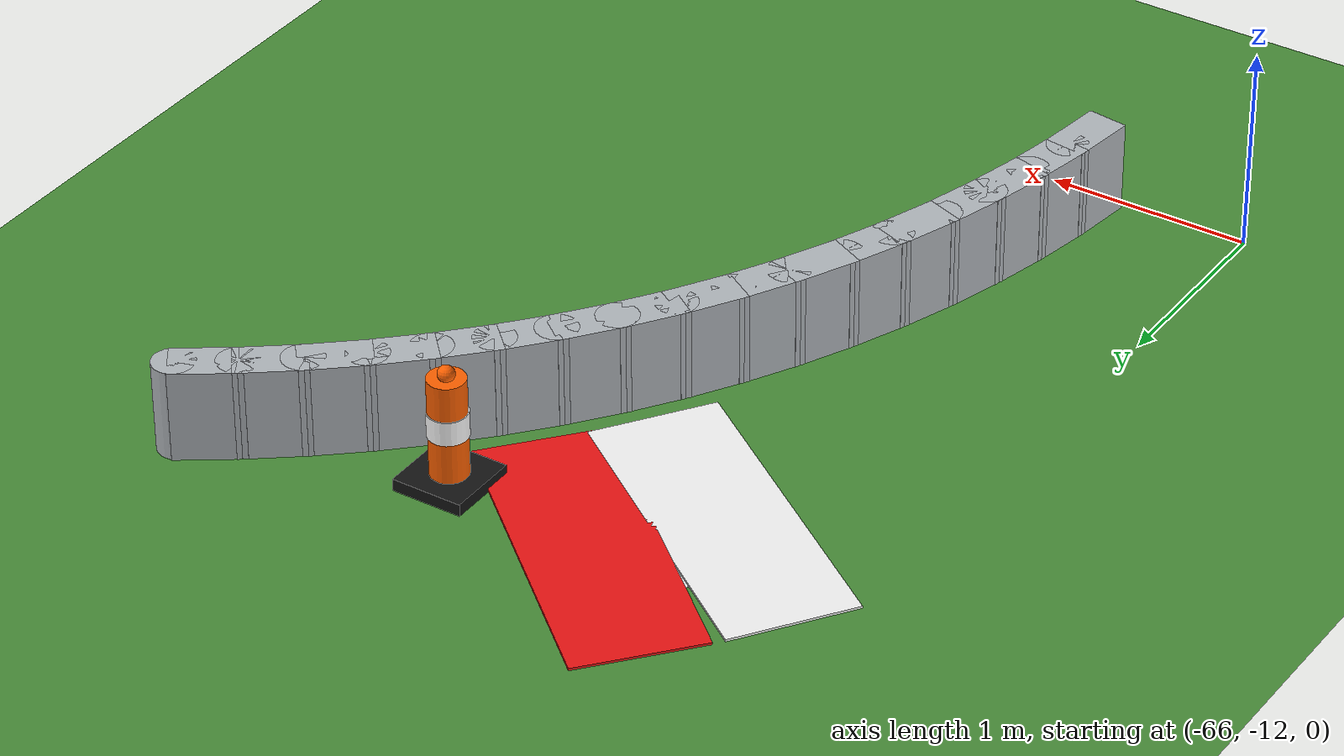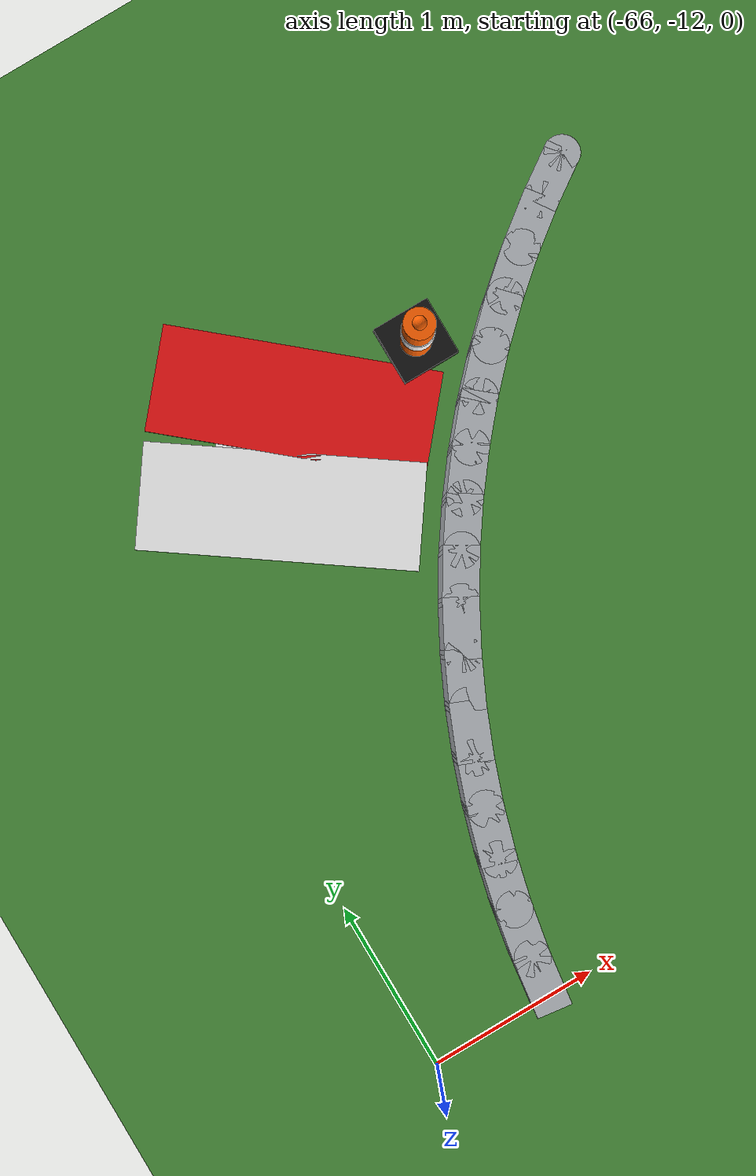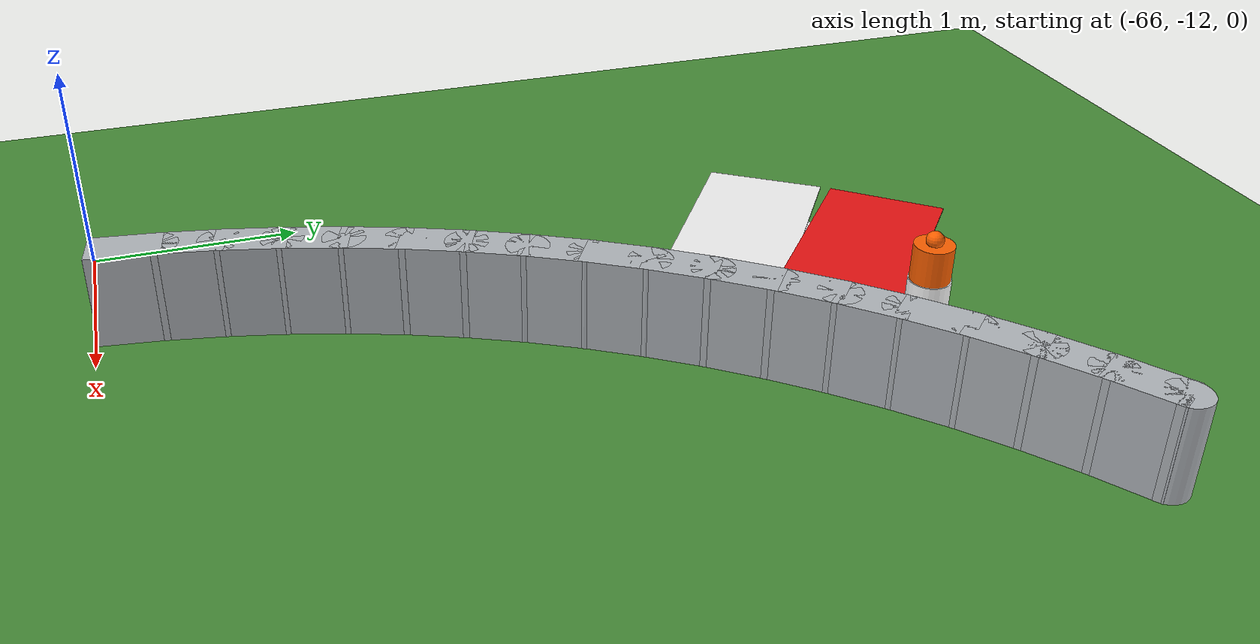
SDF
<sdf version="1.6">
 <world name="sem_silesia_ring_2026">
  <model name="ground_plane">
   <static>true</static>
   <link name="link">
    <collision name="collision">
     <geometry><plane><normal>0 0 1</normal><size>600 600</size></plane></geometry>
     <surface><friction><ode><mu>0.6</mu><mu2>0.6</mu2></ode></friction></surface>
    </collision>
    <visual name="visual">
     <geometry><plane><normal>0 0 1</normal><size>600 600</size></plane></geometry>
     <material><ambient>0.28 0.55 0.22 1</ambient><diffuse>0.28 0.55 0.22 1</diffuse></material>
    </visual>
   </link>
  </model>
  <model name="wl_Li_jnt16">
   <static>true</static>
   <pose>-64.9048 -8.0837 0.0050 0 0 0</pose>
   <link name="link">
    <visual name="v">
     <geometry><cylinder><radius>0.1000</radius><length>0.0040</length></cylinder></geometry>
     <material><ambient>1 1 1 1</ambient><diffuse>1 1 1 1</diffuse></material>
    </visual>
    <collision name="c">
     <geometry><cylinder><radius>0.1000</radius><length>0.0040</length></cylinder></geometry>
     <surface><friction><ode><mu>0.9</mu><mu2>0.9</mu2></ode></friction></surface>
    </collision>
   </link>
  </model>
  <model name="wl_Li_s16">
   <static>true</static>
   <pose>-65.0187 -8.2136 0.0050 0 0 4.0055</pose>
   <link name="link">
    <visual name="v">
     <geometry><box><size>0.4008 0.2000 0.0040</size></box></geometry>
     <material><ambient>1 1 1 1</ambient><diffuse>1 1 1 1</diffuse></material>
    </visual>
    <collision name="c">
     <geometry><box><size>0.4008 0.2000 0.0040</size></box></geometry>
     <surface><friction><ode><mu>0.9</mu><mu2>0.9</mu2></ode></friction></surface>
    </collision>
   </link>
  </model>
  <model name="wl_Li_jnt17">
   <static>true</static>
   <pose>-65.1292 -8.3465 0.0050 0 0 0</pose>
   <link name="link">
    <visual name="v">
     <geometry><cylinder><radius>0.1000</radius><length>0.0040</length></cylinder></geometry>
     <material><ambient>1 1 1 1</ambient><diffuse>1 1 1 1</diffuse></material>
    </visual>
    <collision name="c">
     <geometry><cylinder><radius>0.1000</radius><length>0.0040</length></cylinder></geometry>
     <surface><friction><ode><mu>0.9</mu><mu2>0.9</mu2></ode></friction></surface>
    </collision>
   </link>
  </model>
  <model name="wl_Li_s17">
   <static>true</static>
   <pose>-65.2361 -8.4822 0.0050 0 0 4.0579</pose>
   <link name="link">
    <visual name="v">
     <geometry><box><size>0.4008 0.2000 0.0040</size></box></geometry>
     <material><ambient>1 1 1 1</ambient><diffuse>1 1 1 1</diffuse></material>
    </visual>
    <collision name="c">
     <geometry><box><size>0.4008 0.2000 0.0040</size></box></geometry>
     <surface><friction><ode><mu>0.9</mu><mu2>0.9</mu2></ode></friction></surface>
    </collision>
   </link>
  </model>
  <model name="kL_in_k2">
   <static>true</static>
   <pose>-64.7906 -8.4085 0.0120 0 0 4.0055</pose>
   <link name="link">
    <visual name="v">
     <geometry><box><size>0.6135 1.6000 0.0120</size></box></geometry>
     <material><ambient>0.92 0.08 0.08 1</ambient><diffuse>0.92 0.08 0.08 1</diffuse></material>
    </visual>
    <collision name="c">
     <geometry><box><size>0.6135 1.6000 0.0120</size></box></geometry>
     <surface><friction><ode><mu>0.9</mu><mu2>0.9</mu2></ode></friction></surface>
    </collision>
   </link>
  </model>
  <model name="kL_in_k3">
   <static>true</static>
   <pose>-65.1543 -8.8775 0.0120 0 0 4.0998</pose>
   <link name="link">
    <visual name="v">
     <geometry><box><size>0.6135 1.6000 0.0120</size></box></geometry>
     <material><ambient>0.96 0.96 0.96 1</ambient><diffuse>0.96 0.96 0.96 1</diffuse></material>
    </visual>
    <collision name="c">
     <geometry><box><size>0.6135 1.6000 0.0120</size></box></geometry>
     <surface><friction><ode><mu>0.9</mu><mu2>0.9</mu2></ode></friction></surface>
    </collision>
   </link>
  </model>
  <model name="arm_Li_jnt11">
   <static>true</static>
   <pose>-62.8866 -8.0550 0.2250 0 0 0</pose>
   <link name="link">
    <visual name="v">
     <geometry><cylinder><radius>0.1000</radius><length>0.4500</length></cylinder></geometry>
     <material><ambient>0.70 0.72 0.74 1</ambient><diffuse>0.70 0.72 0.74 1</diffuse></material>
    </visual>
    <collision name="c">
     <geometry><cylinder><radius>0.1000</radius><length>0.4500</length></cylinder></geometry>
     <surface><friction><ode><mu>0.9</mu><mu2>0.9</mu2></ode></friction></surface>
    </collision>
   </link>
  </model>
  <model name="arm_Li_s11">
   <static>true</static>
   <pose>-63.0020 -8.1321 0.2250 0 0 3.7437</pose>
   <link name="link">
    <visual name="v">
     <geometry><box><size>0.3327 0.2000 0.4500</size></box></geometry>
     <material><ambient>0.70 0.72 0.74 1</ambient><diffuse>0.70 0.72 0.74 1</diffuse></material>
    </visual>
    <collision name="c">
     <geometry><box><size>0.3327 0.2000 0.4500</size></box></geometry>
     <surface><friction><ode><mu>0.9</mu><mu2>0.9</mu2></ode></friction></surface>
    </collision>
   </link>
  </model>
  <model name="arm_Li_jnt12">
   <static>true</static>
   <pose>-63.1153 -8.2122 0.2250 0 0 0</pose>
   <link name="link">
    <visual name="v">
     <geometry><cylinder><radius>0.1000</radius><length>0.4500</length></cylinder></geometry>
     <material><ambient>0.70 0.72 0.74 1</ambient><diffuse>0.70 0.72 0.74 1</diffuse></material>
    </visual>
    <collision name="c">
     <geometry><cylinder><radius>0.1000</radius><length>0.4500</length></cylinder></geometry>
     <surface><friction><ode><mu>0.9</mu><mu2>0.9</mu2></ode></friction></surface>
    </collision>
   </link>
  </model>
  <model name="arm_Li_s12">
   <static>true</static>
   <pose>-63.2264 -8.2952 0.2250 0 0 3.7961</pose>
   <link name="link">
    <visual name="v">
     <geometry><box><size>0.3327 0.2000 0.4500</size></box></geometry>
     <material><ambient>0.70 0.72 0.74 1</ambient><diffuse>0.70 0.72 0.74 1</diffuse></material>
    </visual>
    <collision name="c">
     <geometry><box><size>0.3327 0.2000 0.4500</size></box></geometry>
     <surface><friction><ode><mu>0.9</mu><mu2>0.9</mu2></ode></friction></surface>
    </collision>
   </link>
  </model>
  <model name="arm_Li_jnt13">
   <static>true</static>
   <pose>-63.3354 -8.3811 0.2250 0 0 0</pose>
   <link name="link">
    <visual name="v">
     <geometry><cylinder><radius>0.1000</radius><length>0.4500</length></cylinder></geometry>
     <material><ambient>0.70 0.72 0.74 1</ambient><diffuse>0.70 0.72 0.74 1</diffuse></material>
    </visual>
    <collision name="c">
     <geometry><cylinder><radius>0.1000</radius><length>0.4500</length></cylinder></geometry>
     <surface><friction><ode><mu>0.9</mu><mu2>0.9</mu2></ode></friction></surface>
    </collision>
   </link>
  </model>
  <model name="arm_Li_s13">
   <static>true</static>
   <pose>-63.4421 -8.4698 0.2250 0 0 3.8485</pose>
   <link name="link">
    <visual name="v">
     <geometry><box><size>0.3327 0.2000 0.4500</size></box></geometry>
     <material><ambient>0.70 0.72 0.74 1</ambient><diffuse>0.70 0.72 0.74 1</diffuse></material>
    </visual>
    <collision name="c">
     <geometry><box><size>0.3327 0.2000 0.4500</size></box></geometry>
     <surface><friction><ode><mu>0.9</mu><mu2>0.9</mu2></ode></friction></surface>
    </collision>
   </link>
  </model>
  <model name="arm_Li_jnt14">
   <static>true</static>
   <pose>-63.5464 -8.5613 0.2250 0 0 0</pose>
   <link name="link">
    <visual name="v">
     <geometry><cylinder><radius>0.1000</radius><length>0.4500</length></cylinder></geometry>
     <material><ambient>0.70 0.72 0.74 1</ambient><diffuse>0.70 0.72 0.74 1</diffuse></material>
    </visual>
    <collision name="c">
     <geometry><cylinder><radius>0.1000</radius><length>0.4500</length></cylinder></geometry>
     <surface><friction><ode><mu>0.9</mu><mu2>0.9</mu2></ode></friction></surface>
    </collision>
   </link>
  </model>
  <model name="arm_Li_s14">
   <static>true</static>
   <pose>-63.6483 -8.6555 0.2250 0 0 3.9008</pose>
   <link name="link">
    <visual name="v">
     <geometry><box><size>0.3327 0.2000 0.4500</size></box></geometry>
     <material><ambient>0.70 0.72 0.74 1</ambient><diffuse>0.70 0.72 0.74 1</diffuse></material>
    </visual>
    <collision name="c">
     <geometry><box><size>0.3327 0.2000 0.4500</size></box></geometry>
     <surface><friction><ode><mu>0.9</mu><mu2>0.9</mu2></ode></friction></surface>
    </collision>
   </link>
  </model>
  <model name="arm_Li_jnt15">
   <static>true</static>
   <pose>-63.7477 -8.7523 0.2250 0 0 0</pose>
   <link name="link">
    <visual name="v">
     <geometry><cylinder><radius>0.1000</radius><length>0.4500</length></cylinder></geometry>
     <material><ambient>0.70 0.72 0.74 1</ambient><diffuse>0.70 0.72 0.74 1</diffuse></material>
    </visual>
    <collision name="c">
     <geometry><cylinder><radius>0.1000</radius><length>0.4500</length></cylinder></geometry>
     <surface><friction><ode><mu>0.9</mu><mu2>0.9</mu2></ode></friction></surface>
    </collision>
   </link>
  </model>
  <model name="arm_Li_s15">
   <static>true</static>
   <pose>-63.8445 -8.8517 0.2250 0 0 3.9532</pose>
   <link name="link">
    <visual name="v">
     <geometry><box><size>0.3327 0.2000 0.4500</size></box></geometry>
     <material><ambient>0.70 0.72 0.74 1</ambient><diffuse>0.70 0.72 0.74 1</diffuse></material>
    </visual>
    <collision name="c">
     <geometry><box><size>0.3327 0.2000 0.4500</size></box></geometry>
     <surface><friction><ode><mu>0.9</mu><mu2>0.9</mu2></ode></friction></surface>
    </collision>
   </link>
  </model>
  <model name="arm_Li_jnt16">
   <static>true</static>
   <pose>-63.9387 -8.9536 0.2250 0 0 0</pose>
   <link name="link">
    <visual name="v">
     <geometry><cylinder><radius>0.1000</radius><length>0.4500</length></cylinder></geometry>
     <material><ambient>0.70 0.72 0.74 1</ambient><diffuse>0.70 0.72 0.74 1</diffuse></material>
    </visual>
    <collision name="c">
     <geometry><cylinder><radius>0.1000</radius><length>0.4500</length></cylinder></geometry>
     <surface><friction><ode><mu>0.9</mu><mu2>0.9</mu2></ode></friction></surface>
    </collision>
   </link>
  </model>
  <model name="arm_Li_s16">
   <static>true</static>
   <pose>-64.0302 -9.0579 0.2250 0 0 4.0055</pose>
   <link name="link">
    <visual name="v">
     <geometry><box><size>0.3327 0.2000 0.4500</size></box></geometry>
     <material><ambient>0.70 0.72 0.74 1</ambient><diffuse>0.70 0.72 0.74 1</diffuse></material>
    </visual>
    <collision name="c">
     <geometry><box><size>0.3327 0.2000 0.4500</size></box></geometry>
     <surface><friction><ode><mu>0.9</mu><mu2>0.9</mu2></ode></friction></surface>
    </collision>
   </link>
  </model>
  <model name="arm_Li_jnt17">
   <static>true</static>
   <pose>-64.1189 -9.1646 0.2250 0 0 0</pose>
   <link name="link">
    <visual name="v">
     <geometry><cylinder><radius>0.1000</radius><length>0.4500</length></cylinder></geometry>
     <material><ambient>0.70 0.72 0.74 1</ambient><diffuse>0.70 0.72 0.74 1</diffuse></material>
    </visual>
    <collision name="c">
     <geometry><cylinder><radius>0.1000</radius><length>0.4500</length></cylinder></geometry>
     <surface><friction><ode><mu>0.9</mu><mu2>0.9</mu2></ode></friction></surface>
    </collision>
   </link>
  </model>
  <model name="arm_Li_s17">
   <static>true</static>
   <pose>-64.2048 -9.2736 0.2250 0 0 4.0579</pose>
   <link name="link">
    <visual name="v">
     <geometry><box><size>0.3327 0.2000 0.4500</size></box></geometry>
     <material><ambient>0.70 0.72 0.74 1</ambient><diffuse>0.70 0.72 0.74 1</diffuse></material>
    </visual>
    <collision name="c">
     <geometry><box><size>0.3327 0.2000 0.4500</size></box></geometry>
     <surface><friction><ode><mu>0.9</mu><mu2>0.9</mu2></ode></friction></surface>
    </collision>
   </link>
  </model>
  <model name="arm_Li_jnt18">
   <static>true</static>
   <pose>-64.2878 -9.3847 0.2250 0 0 0</pose>
   <link name="link">
    <visual name="v">
     <geometry><cylinder><radius>0.1000</radius><length>0.4500</length></cylinder></geometry>
     <material><ambient>0.70 0.72 0.74 1</ambient><diffuse>0.70 0.72 0.74 1</diffuse></material>
    </visual>
    <collision name="c">
     <geometry><cylinder><radius>0.1000</radius><length>0.4500</length></cylinder></geometry>
     <surface><friction><ode><mu>0.9</mu><mu2>0.9</mu2></ode></friction></surface>
    </collision>
   </link>
  </model>
  <model name="arm_Li_s18">
   <static>true</static>
   <pose>-64.3679 -9.4980 0.2250 0 0 4.1103</pose>
   <link name="link">
    <visual name="v">
     <geometry><box><size>0.3327 0.2000 0.4500</size></box></geometry>
     <material><ambient>0.70 0.72 0.74 1</ambient><diffuse>0.70 0.72 0.74 1</diffuse></material>
    </visual>
    <collision name="c">
     <geometry><box><size>0.3327 0.2000 0.4500</size></box></geometry>
     <surface><friction><ode><mu>0.9</mu><mu2>0.9</mu2></ode></friction></surface>
    </collision>
   </link>
  </model>
  <model name="arm_Li_jnt19">
   <static>true</static>
   <pose>-64.4450 -9.6134 0.2250 0 0 0</pose>
   <link name="link">
    <visual name="v">
     <geometry><cylinder><radius>0.1000</radius><length>0.4500</length></cylinder></geometry>
     <material><ambient>0.70 0.72 0.74 1</ambient><diffuse>0.70 0.72 0.74 1</diffuse></material>
    </visual>
    <collision name="c">
     <geometry><cylinder><radius>0.1000</radius><length>0.4500</length></cylinder></geometry>
     <surface><friction><ode><mu>0.9</mu><mu2>0.9</mu2></ode></friction></surface>
    </collision>
   </link>
  </model>
  <model name="arm_Li_s19">
   <static>true</static>
   <pose>-64.5190 -9.7308 0.2250 0 0 4.1626</pose>
   <link name="link">
    <visual name="v">
     <geometry><box><size>0.3327 0.2000 0.4500</size></box></geometry>
     <material><ambient>0.70 0.72 0.74 1</ambient><diffuse>0.70 0.72 0.74 1</diffuse></material>
    </visual>
    <collision name="c">
     <geometry><box><size>0.3327 0.2000 0.4500</size></box></geometry>
     <surface><friction><ode><mu>0.9</mu><mu2>0.9</mu2></ode></friction></surface>
    </collision>
   </link>
  </model>
  <model name="arm_Li_jnt20">
   <static>true</static>
   <pose>-64.5899 -9.8500 0.2250 0 0 0</pose>
   <link name="link">
    <visual name="v">
     <geometry><cylinder><radius>0.1000</radius><length>0.4500</length></cylinder></geometry>
     <material><ambient>0.70 0.72 0.74 1</ambient><diffuse>0.70 0.72 0.74 1</diffuse></material>
    </visual>
    <collision name="c">
     <geometry><cylinder><radius>0.1000</radius><length>0.4500</length></cylinder></geometry>
     <surface><friction><ode><mu>0.9</mu><mu2>0.9</mu2></ode></friction></surface>
    </collision>
   </link>
  </model>
  <model name="arm_Li_s20">
   <static>true</static>
   <pose>-64.6577 -9.9711 0.2250 0 0 4.2150</pose>
   <link name="link">
    <visual name="v">
     <geometry><box><size>0.3327 0.2000 0.4500</size></box></geometry>
     <material><ambient>0.70 0.72 0.74 1</ambient><diffuse>0.70 0.72 0.74 1</diffuse></material>
    </visual>
    <collision name="c">
     <geometry><box><size>0.3327 0.2000 0.4500</size></box></geometry>
     <surface><friction><ode><mu>0.9</mu><mu2>0.9</mu2></ode></friction></surface>
    </collision>
   </link>
  </model>
  <model name="arm_Li_jnt21">
   <static>true</static>
   <pose>-64.7223 -10.0939 0.2250 0 0 0</pose>
   <link name="link">
    <visual name="v">
     <geometry><cylinder><radius>0.1000</radius><length>0.4500</length></cylinder></geometry>
     <material><ambient>0.70 0.72 0.74 1</ambient><diffuse>0.70 0.72 0.74 1</diffuse></material>
    </visual>
    <collision name="c">
     <geometry><cylinder><radius>0.1000</radius><length>0.4500</length></cylinder></geometry>
     <surface><friction><ode><mu>0.9</mu><mu2>0.9</mu2></ode></friction></surface>
    </collision>
   </link>
  </model>
  <model name="arm_Li_s21">
   <static>true</static>
   <pose>-64.7837 -10.2183 0.2250 0 0 4.2673</pose>
   <link name="link">
    <visual name="v">
     <geometry><box><size>0.3327 0.2000 0.4500</size></box></geometry>
     <material><ambient>0.70 0.72 0.74 1</ambient><diffuse>0.70 0.72 0.74 1</diffuse></material>
    </visual>
    <collision name="c">
     <geometry><box><size>0.3327 0.2000 0.4500</size></box></geometry>
     <surface><friction><ode><mu>0.9</mu><mu2>0.9</mu2></ode></friction></surface>
    </collision>
   </link>
  </model>
  <model name="arm_Li_jnt22">
   <static>true</static>
   <pose>-64.8418 -10.3443 0.2250 0 0 0</pose>
   <link name="link">
    <visual name="v">
     <geometry><cylinder><radius>0.1000</radius><length>0.4500</length></cylinder></geometry>
     <material><ambient>0.70 0.72 0.74 1</ambient><diffuse>0.70 0.72 0.74 1</diffuse></material>
    </visual>
    <collision name="c">
     <geometry><cylinder><radius>0.1000</radius><length>0.4500</length></cylinder></geometry>
     <surface><friction><ode><mu>0.9</mu><mu2>0.9</mu2></ode></friction></surface>
    </collision>
   </link>
  </model>
  <model name="arm_Li_s22">
   <static>true</static>
   <pose>-64.8966 -10.4718 0.2250 0 0 4.3197</pose>
   <link name="link">
    <visual name="v">
     <geometry><box><size>0.3327 0.2000 0.4500</size></box></geometry>
     <material><ambient>0.70 0.72 0.74 1</ambient><diffuse>0.70 0.72 0.74 1</diffuse></material>
    </visual>
    <collision name="c">
     <geometry><box><size>0.3327 0.2000 0.4500</size></box></geometry>
     <surface><friction><ode><mu>0.9</mu><mu2>0.9</mu2></ode></friction></surface>
    </collision>
   </link>
  </model>
  <model name="arm_Li_jnt23">
   <static>true</static>
   <pose>-64.9480 -10.6006 0.2250 0 0 0</pose>
   <link name="link">
    <visual name="v">
     <geometry><cylinder><radius>0.1000</radius><length>0.4500</length></cylinder></geometry>
     <material><ambient>0.70 0.72 0.74 1</ambient><diffuse>0.70 0.72 0.74 1</diffuse></material>
    </visual>
    <collision name="c">
     <geometry><cylinder><radius>0.1000</radius><length>0.4500</length></cylinder></geometry>
     <surface><friction><ode><mu>0.9</mu><mu2>0.9</mu2></ode></friction></surface>
    </collision>
   </link>
  </model>
  <model name="arm_Li_s23">
   <static>true</static>
   <pose>-64.9960 -10.7308 0.2250 0 0 4.3720</pose>
   <link name="link">
    <visual name="v">
     <geometry><box><size>0.3327 0.2000 0.4500</size></box></geometry>
     <material><ambient>0.70 0.72 0.74 1</ambient><diffuse>0.70 0.72 0.74 1</diffuse></material>
    </visual>
    <collision name="c">
     <geometry><box><size>0.3327 0.2000 0.4500</size></box></geometry>
     <surface><friction><ode><mu>0.9</mu><mu2>0.9</mu2></ode></friction></surface>
    </collision>
   </link>
  </model>
  <model name="arm_Li_jnt24">
   <static>true</static>
   <pose>-65.0406 -10.8622 0.2250 0 0 0</pose>
   <link name="link">
    <visual name="v">
     <geometry><cylinder><radius>0.1000</radius><length>0.4500</length></cylinder></geometry>
     <material><ambient>0.70 0.72 0.74 1</ambient><diffuse>0.70 0.72 0.74 1</diffuse></material>
    </visual>
    <collision name="c">
     <geometry><cylinder><radius>0.1000</radius><length>0.4500</length></cylinder></geometry>
     <surface><friction><ode><mu>0.9</mu><mu2>0.9</mu2></ode></friction></surface>
    </collision>
   </link>
  </model>
  <model name="arm_Li_s24">
   <static>true</static>
   <pose>-65.0817 -10.9947 0.2250 0 0 4.4244</pose>
   <link name="link">
    <visual name="v">
     <geometry><box><size>0.3327 0.2000 0.4500</size></box></geometry>
     <material><ambient>0.70 0.72 0.74 1</ambient><diffuse>0.70 0.72 0.74 1</diffuse></material>
    </visual>
    <collision name="c">
     <geometry><box><size>0.3327 0.2000 0.4500</size></box></geometry>
     <surface><friction><ode><mu>0.9</mu><mu2>0.9</mu2></ode></friction></surface>
    </collision>
   </link>
  </model>
  <model name="arm_Li_jnt25">
   <static>true</static>
   <pose>-65.1194 -11.1283 0.2250 0 0 0</pose>
   <link name="link">
    <visual name="v">
     <geometry><cylinder><radius>0.1000</radius><length>0.4500</length></cylinder></geometry>
     <material><ambient>0.70 0.72 0.74 1</ambient><diffuse>0.70 0.72 0.74 1</diffuse></material>
    </visual>
    <collision name="c">
     <geometry><cylinder><radius>0.1000</radius><length>0.4500</length></cylinder></geometry>
     <surface><friction><ode><mu>0.9</mu><mu2>0.9</mu2></ode></friction></surface>
    </collision>
   </link>
  </model>
  <model name="arm_Li_s25">
   <static>true</static>
   <pose>-65.1536 -11.2627 0.2250 0 0 4.4768</pose>
   <link name="link">
    <visual name="v">
     <geometry><box><size>0.3327 0.2000 0.4500</size></box></geometry>
     <material><ambient>0.70 0.72 0.74 1</ambient><diffuse>0.70 0.72 0.74 1</diffuse></material>
    </visual>
    <collision name="c">
     <geometry><box><size>0.3327 0.2000 0.4500</size></box></geometry>
     <surface><friction><ode><mu>0.9</mu><mu2>0.9</mu2></ode></friction></surface>
    </collision>
   </link>
  </model>
  <model name="arm_Li_jnt26">
   <static>true</static>
   <pose>-65.1842 -11.3981 0.2250 0 0 0</pose>
   <link name="link">
    <visual name="v">
     <geometry><cylinder><radius>0.1000</radius><length>0.4500</length></cylinder></geometry>
     <material><ambient>0.70 0.72 0.74 1</ambient><diffuse>0.70 0.72 0.74 1</diffuse></material>
    </visual>
    <collision name="c">
     <geometry><cylinder><radius>0.1000</radius><length>0.4500</length></cylinder></geometry>
     <surface><friction><ode><mu>0.9</mu><mu2>0.9</mu2></ode></friction></surface>
    </collision>
   </link>
  </model>
  <model name="arm_Li_s26">
   <static>true</static>
   <pose>-65.2113 -11.5342 0.2250 0 0 4.5291</pose>
   <link name="link">
    <visual name="v">
     <geometry><box><size>0.3327 0.2000 0.4500</size></box></geometry>
     <material><ambient>0.70 0.72 0.74 1</ambient><diffuse>0.70 0.72 0.74 1</diffuse></material>
    </visual>
    <collision name="c">
     <geometry><box><size>0.3327 0.2000 0.4500</size></box></geometry>
     <surface><friction><ode><mu>0.9</mu><mu2>0.9</mu2></ode></friction></surface>
    </collision>
   </link>
  </model>
  <model name="arm_Li_jnt27">
   <static>true</static>
   <pose>-65.2347 -11.6709 0.2250 0 0 0</pose>
   <link name="link">
    <visual name="v">
     <geometry><cylinder><radius>0.1000</radius><length>0.4500</length></cylinder></geometry>
     <material><ambient>0.70 0.72 0.74 1</ambient><diffuse>0.70 0.72 0.74 1</diffuse></material>
    </visual>
    <collision name="c">
     <geometry><cylinder><radius>0.1000</radius><length>0.4500</length></cylinder></geometry>
     <surface><friction><ode><mu>0.9</mu><mu2>0.9</mu2></ode></friction></surface>
    </collision>
   </link>
  </model>
  <model name="arm_Li_s27">
   <static>true</static>
   <pose>-65.2547 -11.8082 0.2250 0 0 4.5815</pose>
   <link name="link">
    <visual name="v">
     <geometry><box><size>0.3327 0.2000 0.4500</size></box></geometry>
     <material><ambient>0.70 0.72 0.74 1</ambient><diffuse>0.70 0.72 0.74 1</diffuse></material>
    </visual>
    <collision name="c">
     <geometry><box><size>0.3327 0.2000 0.4500</size></box></geometry>
     <surface><friction><ode><mu>0.9</mu><mu2>0.9</mu2></ode></friction></surface>
    </collision>
   </link>
  </model>
  <model name="cn_Li_2">
   <static>true</static>
   <pose>-64.0305 -8.4695 0 0 0 0</pose>
   <link name="link">
    <visual name="base">
     <pose>0 0 0.03 0 0 0</pose>
     <geometry><box><size>0.35 0.35 0.06</size></box></geometry>
     <material><ambient>0.08 0.08 0.08 1</ambient><diffuse>0.08 0.08 0.08 1</diffuse></material>
    </visual>
    <visual name="body">
     <pose>0 0 0.30 0 0 0</pose>
     <geometry><cylinder><radius>0.09</radius><length>0.50</length></cylinder></geometry>
     <material><ambient>1.0 0.38 0.0 1</ambient><diffuse>1.0 0.38 0.0 1</diffuse></material>
    </visual>
    <visual name="stripe">
     <pose>0 0 0.32 0 0 0</pose>
     <geometry><cylinder><radius>0.095</radius><length>0.12</length></cylinder></geometry>
     <material><ambient>1 1 1 1</ambient><diffuse>1 1 1 1</diffuse></material>
    </visual>
    <visual name="tip">
     <pose>0 0 0.57 0 0 0</pose>
     <geometry><sphere><radius>0.04</radius></sphere></geometry>
     <material><ambient>1.0 0.38 0.0 1</ambient><diffuse>1.0 0.38 0.0 1</diffuse></material>
    </visual>
    <collision name="c">
     <pose>0 0 0.28 0 0 0</pose>
     <geometry><cylinder><radius>0.09</radius><length>0.56</length></cylinder></geometry>
    </collision>
   </link>
  </model>
 </world>
</sdf>
